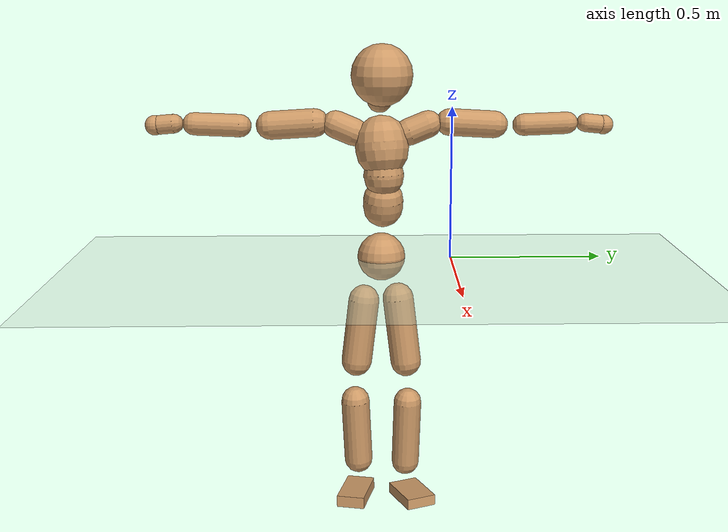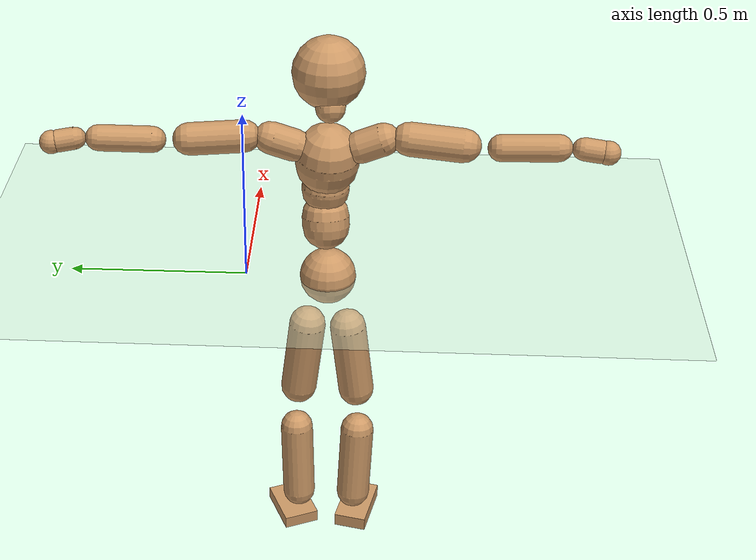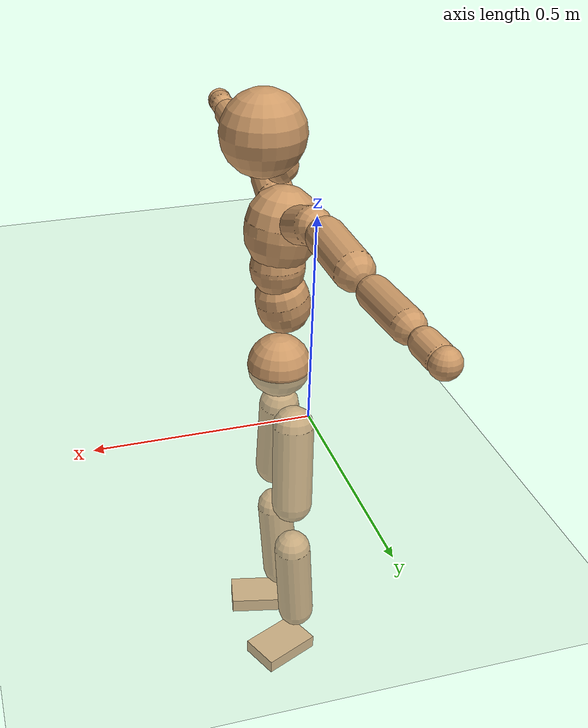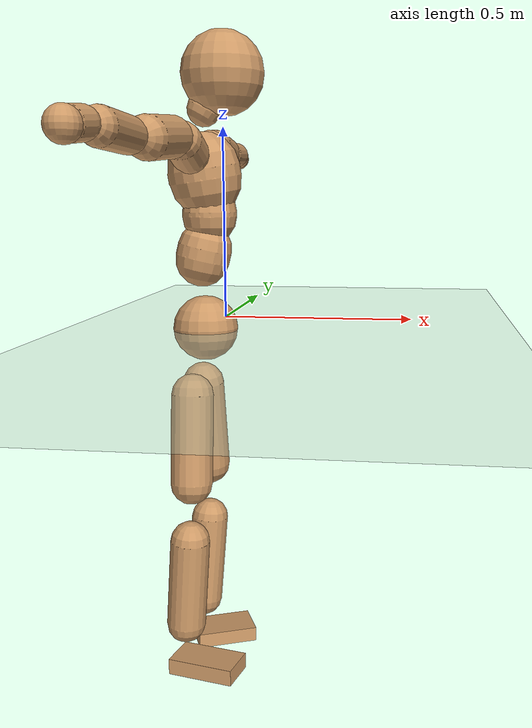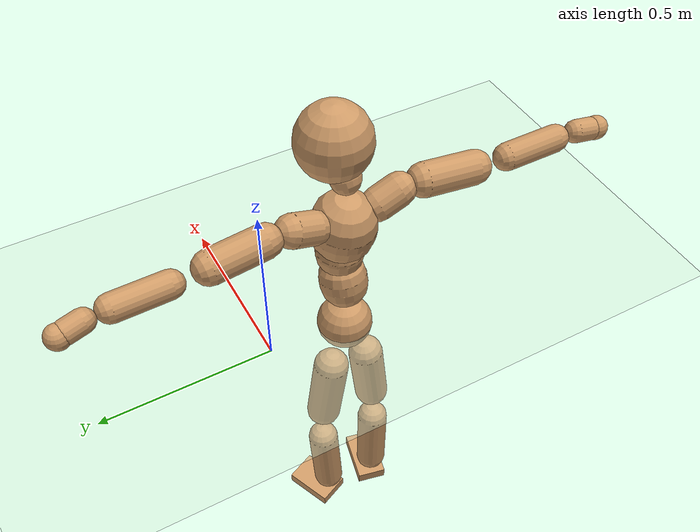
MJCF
<mujoco model="humanoid">
  <compiler coordinate="local" angle="radian"/>
  <default>
    <joint damping="0.0" armature="0.01" stiffness="0.0" limited="true"/>
    <geom conaffinity="1" condim="3" contype="7" margin="0.001" rgba="0.8 0.6 .4 1"/>
  </default>
  <asset>
    <texture type="skybox" builtin="gradient" rgb1=".4 .5 .6" rgb2="0 0 0" width="100" height="100"/>
    <texture builtin="flat" height="1278" mark="cross" markrgb="1 1 1" name="texgeom" random="0.01" rgb1="0.8 0.6 0.4" rgb2="0.8 0.6 0.4" type="cube" width="127"/>
    <texture builtin="checker" height="100" name="texplane" rgb1="0 0 0" rgb2="0.8 0.8 0.8" type="2d" width="100"/>
    <material name="MatPlane" reflectance="0.5" shininess="1" specular="1" texrepeat="60 60" texture="texplane"/>
    <material name="geom" texture="texgeom" texuniform="true"/>
  </asset>
  <worldbody>
    <light cutoff="100" diffuse="1 1 1" dir="-0 0 -1.3" directional="true" exponent="1" pos="0 0 1.3" specular=".1 .1 .1"/>
    <geom conaffinity="1" condim="3" name="floor" pos="0 0 0" rgba="0.8 0.9 0.8 1" size="100 100 .2" type="plane" material="MatPlane"/>
    <body name="Pelvis" pos="-0.0018 -0.2305 0.0038">
      <freejoint name="Pelvis"/>
      <geom type="sphere" contype="1" conaffinity="1" density="500" size="0.0796" pos="0.0000 0.0000 0.0000" name="Pelvis"/>
      <body name="L_Hip" pos="-0.0253 0.0483 -0.0769">
        <joint name="L_Hip_x" type="hinge" pos="0 0 0" axis="1 0 0" stiffness="800" damping="80" armature="0.02" range="-180.0000 180.0000"/>
        <joint name="L_Hip_y" type="hinge" pos="0 0 0" axis="0 1 0" stiffness="800" damping="80" armature="0.02" range="-180.0000 180.0000"/>
        <joint name="L_Hip_z" type="hinge" pos="0 0 0" axis="0 0 1" stiffness="800" damping="80" armature="0.02" range="-180.0000 180.0000"/>
        <geom type="capsule" contype="1" conaffinity="1" density="500" fromto="0.0022 0.0089 -0.0745 0.0087 0.0355 -0.2981" size="0.0522" name="L_Hip"/>
        <body name="L_Knee" pos="0.0109 0.0444 -0.3727">
          <joint name="L_Knee_x" type="hinge" pos="0 0 0" axis="1 0 0" stiffness="800" damping="80" armature="0.02" range="-180.0000 180.0000"/>
          <joint name="L_Knee_y" type="hinge" pos="0 0 0" axis="0 1 0" stiffness="800" damping="80" armature="0.02" range="-180.0000 180.0000"/>
          <joint name="L_Knee_z" type="hinge" pos="0 0 0" axis="0 0 1" stiffness="800" damping="80" armature="0.02" range="-180.0000 180.0000"/>
          <geom type="capsule" contype="1" conaffinity="1" density="500" fromto="-0.0062 -0.0021 -0.0767 -0.0248 -0.0086 -0.3069" size="0.0476" name="L_Knee"/>
          <body name="L_Ankle" pos="-0.031 -0.0107 -0.3836">
            <joint name="L_Ankle_x" type="hinge" pos="0 0 0" axis="1 0 0" stiffness="800" damping="80" armature="0.02" range="-180.0000 180.0000"/>
            <joint name="L_Ankle_y" type="hinge" pos="0 0 0" axis="0 1 0" stiffness="800" damping="80" armature="0.02" range="-180.0000 180.0000"/>
            <joint name="L_Ankle_z" type="hinge" pos="0 0 0" axis="0 0 1" stiffness="800" damping="80" armature="0.02" range="-180.0000 180.0000"/>
            <geom type="box" contype="1" conaffinity="1" density="500" pos="0.0556 0.0240 -0.0283" size="0.0778 0.0518 0.0185" quat="0.9793 0.0000 0.0000 0.2026" name="L_Ankle"/>
            <body name="L_Toe" pos="0.1112 0.0481 -0.0567">
              <joint name="L_Toe_x" type="hinge" pos="0 0 0" axis="1 0 0" stiffness="500" damping="50" armature="0.02" range="-180.0000 180.0000"/>
              <joint name="L_Toe_y" type="hinge" pos="0 0 0" axis="0 1 0" stiffness="500" damping="50" armature="0.02" range="-180.0000 180.0000"/>
              <joint name="L_Toe_z" type="hinge" pos="0 0 0" axis="0 0 1" stiffness="500" damping="50" armature="0.02" range="-180.0000 180.0000"/>
              <geom type="box" contype="1" conaffinity="1" density="500" pos="0.0000 0.0000 0.0306" size="0.001 0.0025 0.001" quat="0.9784 0.0000 0.0000 0.2067" name="L_Toe"/>
            </body>
          </body>
        </body>
      </body>
      <body name="R_Hip" pos="-0.0226 -0.0503 -0.0846">
        <joint name="R_Hip_x" type="hinge" pos="0 0 0" axis="1 0 0" stiffness="800" damping="80" armature="0.02" range="-180.0000 180.0000"/>
        <joint name="R_Hip_y" type="hinge" pos="0 0 0" axis="0 1 0" stiffness="800" damping="80" armature="0.02" range="-180.0000 180.0000"/>
        <joint name="R_Hip_z" type="hinge" pos="0 0 0" axis="0 0 1" stiffness="800" damping="80" armature="0.02" range="-180.0000 180.0000"/>
        <geom type="capsule" contype="1" conaffinity="1" density="500" fromto="-0.0002 -0.0088 -0.0727 -0.0006 -0.0351 -0.2908" size="0.0516" name="R_Hip"/>
        <body name="R_Knee" pos="-0.0008 -0.0439 -0.3634">
          <joint name="R_Knee_x" type="hinge" pos="0 0 0" axis="1 0 0" stiffness="800" damping="80" armature="0.02" range="-180.0000 180.0000"/>
          <joint name="R_Knee_y" type="hinge" pos="0 0 0" axis="0 1 0" stiffness="800" damping="80" armature="0.02" range="-180.0000 180.0000"/>
          <joint name="R_Knee_z" type="hinge" pos="0 0 0" axis="0 0 1" stiffness="800" damping="80" armature="0.02" range="-180.0000 180.0000"/>
          <geom type="capsule" contype="1" conaffinity="1" density="500" fromto="-0.0058 0.0032 -0.0753 -0.0231 0.0127 -0.3012" size="0.0487" name="R_Knee"/>
          <body name="R_Ankle" pos="-0.0288 0.0159 -0.3765">
            <joint name="R_Ankle_x" type="hinge" pos="0 0 0" axis="1 0 0" stiffness="800" damping="80" armature="0.02" range="-180.0000 180.0000"/>
            <joint name="R_Ankle_y" type="hinge" pos="0 0 0" axis="0 1 0" stiffness="800" damping="80" armature="0.02" range="-180.0000 180.0000"/>
            <joint name="R_Ankle_z" type="hinge" pos="0 0 0" axis="0 0 1" stiffness="800" damping="80" armature="0.02" range="-180.0000 180.0000"/>
            <geom type="box" contype="1" conaffinity="1" density="500" pos="0.0604 -0.0135 -0.0295" size="0.0852 0.0474 0.02" quat="0.9940 0.0000 0.0000 -0.1093" name="R_Ankle"/>
            <body name="R_Toe" pos="0.1209 -0.0269 -0.0591">
              <joint name="R_Toe_x" type="hinge" pos="0 0 0" axis="1 0 0" stiffness="500" damping="50" armature="0.02" range="-180.0000 180.0000"/>
              <joint name="R_Toe_y" type="hinge" pos="0 0 0" axis="0 1 0" stiffness="500" damping="50" armature="0.02" range="-180.0000 180.0000"/>
              <joint name="R_Toe_z" type="hinge" pos="0 0 0" axis="0 0 1" stiffness="500" damping="50" armature="0.02" range="-180.0000 180.0000"/>
              <geom type="box" contype="1" conaffinity="1" density="500" pos="0.0000 0.0000 0.0323" size="0.0009 0.0023 0.0011" quat="0.9950 0.0000 0.0000 -0.0999" name="R_Toe"/>
            </body>
          </body>
        </body>
      </body>
      <body name="Torso" pos="-0.0192 0.0039 0.1119">
        <joint name="Torso_x" type="hinge" pos="0 0 0" axis="1 0 0" stiffness="1000" damping="100" armature="0.02" range="-180.0000 180.0000"/>
        <joint name="Torso_y" type="hinge" pos="0 0 0" axis="0 1 0" stiffness="1000" damping="100" armature="0.02" range="-180.0000 180.0000"/>
        <joint name="Torso_z" type="hinge" pos="0 0 0" axis="0 0 1" stiffness="1000" damping="100" armature="0.02" range="-180.0000 180.0000"/>
        <geom type="capsule" contype="1" conaffinity="1" density="500" fromto="0.0192 0.0030 0.0823 0.0128 0.0020 0.0549" size="0.0659" name="Torso"/>
        <body name="Spine" pos="0.032 0.005 0.1372">
          <joint name="Spine_x" type="hinge" pos="0 0 0" axis="1 0 0" stiffness="1000" damping="100" armature="0.02" range="-180.0000 180.0000"/>
          <joint name="Spine_y" type="hinge" pos="0 0 0" axis="0 1 0" stiffness="1000" damping="100" armature="0.02" range="-180.0000 180.0000"/>
          <joint name="Spine_z" type="hinge" pos="0 0 0" axis="0 0 1" stiffness="1000" damping="100" armature="0.02" range="-180.0000 180.0000"/>
          <geom type="capsule" contype="1" conaffinity="1" density="500" fromto="0.0002 -0.0010 0.0330 0.0001 -0.0007 0.0220" size="0.0659" name="Spine"/>
          <body name="Chest" pos="0.0003 -0.0017 0.055">
            <joint name="Chest_x" type="hinge" pos="0 0 0" axis="1 0 0" stiffness="1000" damping="100" armature="0.02" range="-180.0000 180.0000"/>
            <joint name="Chest_y" type="hinge" pos="0 0 0" axis="0 1 0" stiffness="1000" damping="100" armature="0.02" range="-180.0000 180.0000"/>
            <joint name="Chest_z" type="hinge" pos="0 0 0" axis="0 0 1" stiffness="1000" damping="100" armature="0.02" range="-180.0000 180.0000"/>
            <geom type="capsule" contype="1" conaffinity="1" density="500" fromto="-0.0116 -0.0054 0.0798 -0.0078 -0.0036 0.0532" size="0.0873" name="Chest"/>
            <body name="Neck" pos="-0.0174 -0.0135 0.1953">
              <joint name="Neck_x" type="hinge" pos="0 0 0" axis="1 0 0" stiffness="500" damping="50" armature="0.02" range="-180.0000 180.0000"/>
              <joint name="Neck_y" type="hinge" pos="0 0 0" axis="0 1 0" stiffness="500" damping="50" armature="0.02" range="-180.0000 180.0000"/>
              <joint name="Neck_z" type="hinge" pos="0 0 0" axis="0 0 1" stiffness="500" damping="50" armature="0.02" range="-180.0000 180.0000"/>
              <geom type="capsule" contype="1" conaffinity="1" density="500" fromto="0.0111 0.0018 0.0205 0.0443 0.0070 0.0818" size="0.041" name="Neck"/>
              <body name="Head" pos="0.0554 0.0088 0.1023">
                <joint name="Head_x" type="hinge" pos="0 0 0" axis="1 0 0" stiffness="500" damping="50" armature="0.02" range="-180.0000 180.0000"/>
                <joint name="Head_y" type="hinge" pos="0 0 0" axis="0 1 0" stiffness="500" damping="50" armature="0.02" range="-180.0000 180.0000"/>
                <joint name="Head_z" type="hinge" pos="0 0 0" axis="0 0 1" stiffness="500" damping="50" armature="0.02" range="-180.0000 180.0000"/>
                <geom type="sphere" contype="1" conaffinity="1" density="500" size="0.0991" pos="0.0000 0.0000 0.0000" name="Head"/>
              </body>
            </body>
            <body name="L_Thorax" pos="-0.0191 0.0612 0.1017">
              <joint name="L_Thorax_x" type="hinge" pos="0 0 0" axis="1 0 0" stiffness="500" damping="50" armature="0.02" range="-180.0000 180.0000"/>
              <joint name="L_Thorax_y" type="hinge" pos="0 0 0" axis="0 1 0" stiffness="500" damping="50" armature="0.02" range="-180.0000 180.0000"/>
              <joint name="L_Thorax_z" type="hinge" pos="0 0 0" axis="0 0 1" stiffness="500" damping="50" armature="0.02" range="-180.0000 180.0000"/>
              <geom type="capsule" contype="1" conaffinity="1" density="500" fromto="-0.0026 0.0214 0.0084 -0.0103 0.0856 0.0336" size="0.0443" name="L_Thorax"/>
              <body name="L_Shoulder" pos="-0.0128 0.107 0.042">
                <joint name="L_Shoulder_x" type="hinge" pos="0 0 0" axis="1 0 0" stiffness="500" damping="50" armature="0.02" range="-720.0000 720.0000"/>
                <joint name="L_Shoulder_y" type="hinge" pos="0 0 0" axis="0 1 0" stiffness="500" damping="50" armature="0.02" range="-720.0000 720.0000"/>
                <joint name="L_Shoulder_z" type="hinge" pos="0 0 0" axis="0 0 1" stiffness="500" damping="50" armature="0.02" range="-720.0000 720.0000"/>
                <geom type="capsule" contype="1" conaffinity="1" density="500" fromto="-0.0024 0.0490 -0.0030 -0.0095 0.1960 -0.0119" size="0.0444" name="L_Shoulder"/>
                <body name="L_Elbow" pos="-0.0119 0.245 -0.0149">
                  <joint name="L_Elbow_x" type="hinge" pos="0 0 0" axis="1 0 0" stiffness="500" damping="50" armature="0.02" range="-720.0000 720.0000"/>
                  <joint name="L_Elbow_y" type="hinge" pos="0 0 0" axis="0 1 0" stiffness="500" damping="50" armature="0.02" range="-720.0000 720.0000"/>
                  <joint name="L_Elbow_z" type="hinge" pos="0 0 0" axis="0 0 1" stiffness="500" damping="50" armature="0.02" range="-720.0000 720.0000"/>
                  <geom type="capsule" contype="1" conaffinity="1" density="500" fromto="-0.0024 0.0479 0.0016 -0.0096 0.1916 0.0063" size="0.0359" name="L_Elbow"/>
                  <body name="L_Wrist" pos="-0.0119 0.2395 0.0079">
                    <joint name="L_Wrist_x" type="hinge" pos="0 0 0" axis="1 0 0" stiffness="300" damping="30" armature="0.02" range="-180.0000 180.0000"/>
                    <joint name="L_Wrist_y" type="hinge" pos="0 0 0" axis="0 1 0" stiffness="300" damping="30" armature="0.02" range="-180.0000 180.0000"/>
                    <joint name="L_Wrist_z" type="hinge" pos="0 0 0" axis="0 0 1" stiffness="300" damping="30" armature="0.02" range="-180.0000 180.0000"/>
                    <geom type="capsule" contype="1" conaffinity="1" density="500" fromto="-0.0028 0.0155 -0.0019 -0.0112 0.0620 -0.0075" size="0.0304" name="L_Wrist"/>
                    <body name="L_Hand" pos="-0.014 0.0775 -0.0094">
                      <joint name="L_Hand_x" type="hinge" pos="0 0 0" axis="1 0 0" stiffness="300" damping="30" armature="0.02" range="-180.0000 180.0000"/>
                      <joint name="L_Hand_y" type="hinge" pos="0 0 0" axis="0 1 0" stiffness="300" damping="30" armature="0.02" range="-180.0000 180.0000"/>
                      <joint name="L_Hand_z" type="hinge" pos="0 0 0" axis="0 0 1" stiffness="300" damping="30" armature="0.02" range="-180.0000 180.0000"/>
                      <geom type="sphere" contype="1" conaffinity="1" density="500" size="0.0319" pos="0.0000 0.0000 0.0000" name="L_Hand"/>
                    </body>
                  </body>
                </body>
              </body>
            </body>
            <body name="R_Thorax" pos="-0.0216 -0.0746 0.1018">
              <joint name="R_Thorax_x" type="hinge" pos="0 0 0" axis="1 0 0" stiffness="500" damping="50" armature="0.02" range="-180.0000 180.0000"/>
              <joint name="R_Thorax_y" type="hinge" pos="0 0 0" axis="0 1 0" stiffness="500" damping="50" armature="0.02" range="-180.0000 180.0000"/>
              <joint name="R_Thorax_z" type="hinge" pos="0 0 0" axis="0 0 1" stiffness="500" damping="50" armature="0.02" range="-180.0000 180.0000"/>
              <geom type="capsule" contype="1" conaffinity="1" density="500" fromto="-0.0007 -0.0199 0.0084 -0.0027 -0.0797 0.0336" size="0.0452" name="R_Thorax"/>
              <body name="R_Shoulder" pos="-0.0034 -0.0996 0.042">
                <joint name="R_Shoulder_x" type="hinge" pos="0 0 0" axis="1 0 0" stiffness="500" damping="50" armature="0.02" range="-720.0000 720.0000"/>
                <joint name="R_Shoulder_y" type="hinge" pos="0 0 0" axis="0 1 0" stiffness="500" damping="50" armature="0.02" range="-720.0000 720.0000"/>
                <joint name="R_Shoulder_z" type="hinge" pos="0 0 0" axis="0 0 1" stiffness="500" damping="50" armature="0.02" range="-720.0000 720.0000"/>
                <geom type="capsule" contype="1" conaffinity="1" density="500" fromto="-0.0038 -0.0486 -0.0033 -0.0150 -0.1945 -0.0131" size="0.0462" name="R_Shoulder"/>
                <body name="R_Elbow" pos="-0.0188 -0.2431 -0.0164">
                  <joint name="R_Elbow_x" type="hinge" pos="0 0 0" axis="1 0 0" stiffness="500" damping="50" armature="0.02" range="-720.0000 720.0000"/>
                  <joint name="R_Elbow_y" type="hinge" pos="0 0 0" axis="0 1 0" stiffness="500" damping="50" armature="0.02" range="-720.0000 720.0000"/>
                  <joint name="R_Elbow_z" type="hinge" pos="0 0 0" axis="0 0 1" stiffness="500" damping="50" armature="0.02" range="-720.0000 720.0000"/>
                  <geom type="capsule" contype="1" conaffinity="1" density="500" fromto="-0.0015 -0.0499 0.0020 -0.0058 -0.1996 0.0080" size="0.0372" name="R_Elbow"/>
                  <body name="R_Wrist" pos="-0.0073 -0.2495 0.01">
                    <joint name="R_Wrist_x" type="hinge" pos="0 0 0" axis="1 0 0" stiffness="300" damping="30" armature="0.02" range="-180.0000 180.0000"/>
                    <joint name="R_Wrist_y" type="hinge" pos="0 0 0" axis="0 1 0" stiffness="300" damping="30" armature="0.02" range="-180.0000 180.0000"/>
                    <joint name="R_Wrist_z" type="hinge" pos="0 0 0" axis="0 0 1" stiffness="300" damping="30" armature="0.02" range="-180.0000 180.0000"/>
                    <geom type="capsule" contype="1" conaffinity="1" density="500" fromto="-0.0019 -0.0160 -0.0015 -0.0074 -0.0639 -0.0060" size="0.0312" name="R_Wrist"/>
                    <body name="R_Hand" pos="-0.0093 -0.0799 -0.0075">
                      <joint name="R_Hand_x" type="hinge" pos="0 0 0" axis="1 0 0" stiffness="300" damping="30" armature="0.02" range="-180.0000 180.0000"/>
                      <joint name="R_Hand_y" type="hinge" pos="0 0 0" axis="0 1 0" stiffness="300" damping="30" armature="0.02" range="-180.0000 180.0000"/>
                      <joint name="R_Hand_z" type="hinge" pos="0 0 0" axis="0 0 1" stiffness="300" damping="30" armature="0.02" range="-180.0000 180.0000"/>
                      <geom type="sphere" contype="1" conaffinity="1" density="500" size="0.0325" pos="0.0000 0.0000 0.0000" name="R_Hand"/>
                    </body>
                  </body>
                </body>
              </body>
            </body>
          </body>
        </body>
      </body>
    </body>
  </worldbody>
  <actuator>
    <motor name="L_Hip_x" joint="L_Hip_x" gear="500"/>
    <motor name="L_Hip_y" joint="L_Hip_y" gear="500"/>
    <motor name="L_Hip_z" joint="L_Hip_z" gear="500"/>
    <motor name="L_Knee_x" joint="L_Knee_x" gear="500"/>
    <motor name="L_Knee_y" joint="L_Knee_y" gear="500"/>
    <motor name="L_Knee_z" joint="L_Knee_z" gear="500"/>
    <motor name="L_Ankle_x" joint="L_Ankle_x" gear="500"/>
    <motor name="L_Ankle_y" joint="L_Ankle_y" gear="500"/>
    <motor name="L_Ankle_z" joint="L_Ankle_z" gear="500"/>
    <motor name="L_Toe_x" joint="L_Toe_x" gear="500"/>
    <motor name="L_Toe_y" joint="L_Toe_y" gear="500"/>
    <motor name="L_Toe_z" joint="L_Toe_z" gear="500"/>
    <motor name="R_Hip_x" joint="R_Hip_x" gear="500"/>
    <motor name="R_Hip_y" joint="R_Hip_y" gear="500"/>
    <motor name="R_Hip_z" joint="R_Hip_z" gear="500"/>
    <motor name="R_Knee_x" joint="R_Knee_x" gear="500"/>
    <motor name="R_Knee_y" joint="R_Knee_y" gear="500"/>
    <motor name="R_Knee_z" joint="R_Knee_z" gear="500"/>
    <motor name="R_Ankle_x" joint="R_Ankle_x" gear="500"/>
    <motor name="R_Ankle_y" joint="R_Ankle_y" gear="500"/>
    <motor name="R_Ankle_z" joint="R_Ankle_z" gear="500"/>
    <motor name="R_Toe_x" joint="R_Toe_x" gear="500"/>
    <motor name="R_Toe_y" joint="R_Toe_y" gear="500"/>
    <motor name="R_Toe_z" joint="R_Toe_z" gear="500"/>
    <motor name="Torso_x" joint="Torso_x" gear="500"/>
    <motor name="Torso_y" joint="Torso_y" gear="500"/>
    <motor name="Torso_z" joint="Torso_z" gear="500"/>
    <motor name="Spine_x" joint="Spine_x" gear="500"/>
    <motor name="Spine_y" joint="Spine_y" gear="500"/>
    <motor name="Spine_z" joint="Spine_z" gear="500"/>
    <motor name="Chest_x" joint="Chest_x" gear="500"/>
    <motor name="Chest_y" joint="Chest_y" gear="500"/>
    <motor name="Chest_z" joint="Chest_z" gear="500"/>
    <motor name="Neck_x" joint="Neck_x" gear="500"/>
    <motor name="Neck_y" joint="Neck_y" gear="500"/>
    <motor name="Neck_z" joint="Neck_z" gear="500"/>
    <motor name="Head_x" joint="Head_x" gear="500"/>
    <motor name="Head_y" joint="Head_y" gear="500"/>
    <motor name="Head_z" joint="Head_z" gear="500"/>
    <motor name="L_Thorax_x" joint="L_Thorax_x" gear="500"/>
    <motor name="L_Thorax_y" joint="L_Thorax_y" gear="500"/>
    <motor name="L_Thorax_z" joint="L_Thorax_z" gear="500"/>
    <motor name="L_Shoulder_x" joint="L_Shoulder_x" gear="500"/>
    <motor name="L_Shoulder_y" joint="L_Shoulder_y" gear="500"/>
    <motor name="L_Shoulder_z" joint="L_Shoulder_z" gear="500"/>
    <motor name="L_Elbow_x" joint="L_Elbow_x" gear="500"/>
    <motor name="L_Elbow_y" joint="L_Elbow_y" gear="500"/>
    <motor name="L_Elbow_z" joint="L_Elbow_z" gear="500"/>
    <motor name="L_Wrist_x" joint="L_Wrist_x" gear="500"/>
    <motor name="L_Wrist_y" joint="L_Wrist_y" gear="500"/>
    <motor name="L_Wrist_z" joint="L_Wrist_z" gear="500"/>
    <motor name="L_Hand_x" joint="L_Hand_x" gear="500"/>
    <motor name="L_Hand_y" joint="L_Hand_y" gear="500"/>
    <motor name="L_Hand_z" joint="L_Hand_z" gear="500"/>
    <motor name="R_Thorax_x" joint="R_Thorax_x" gear="500"/>
    <motor name="R_Thorax_y" joint="R_Thorax_y" gear="500"/>
    <motor name="R_Thorax_z" joint="R_Thorax_z" gear="500"/>
    <motor name="R_Shoulder_x" joint="R_Shoulder_x" gear="500"/>
    <motor name="R_Shoulder_y" joint="R_Shoulder_y" gear="500"/>
    <motor name="R_Shoulder_z" joint="R_Shoulder_z" gear="500"/>
    <motor name="R_Elbow_x" joint="R_Elbow_x" gear="500"/>
    <motor name="R_Elbow_y" joint="R_Elbow_y" gear="500"/>
    <motor name="R_Elbow_z" joint="R_Elbow_z" gear="500"/>
    <motor name="R_Wrist_x" joint="R_Wrist_x" gear="500"/>
    <motor name="R_Wrist_y" joint="R_Wrist_y" gear="500"/>
    <motor name="R_Wrist_z" joint="R_Wrist_z" gear="500"/>
    <motor name="R_Hand_x" joint="R_Hand_x" gear="500"/>
    <motor name="R_Hand_y" joint="R_Hand_y" gear="500"/>
    <motor name="R_Hand_z" joint="R_Hand_z" gear="500"/>
  </actuator>
  <contact>
    <exclude body1="Torso" body2="Chest"/>
    <exclude body1="Head" body2="Chest"/>
    <exclude body1="R_Knee" body2="R_Toe"/>
    <exclude body1="R_Knee" body2="L_Ankle"/>
    <exclude body1="R_Knee" body2="L_Toe"/>
    <exclude body1="L_Knee" body2="L_Toe"/>
    <exclude body1="L_Knee" body2="R_Ankle"/>
    <exclude body1="L_Knee" body2="R_Toe"/>
    <exclude body1="L_Shoulder" body2="Chest"/>
    <exclude body1="R_Shoulder" body2="Chest"/>
  </contact>
  <sensor/>
  <size njmax="700" nconmax="700"/>
</mujoco>
